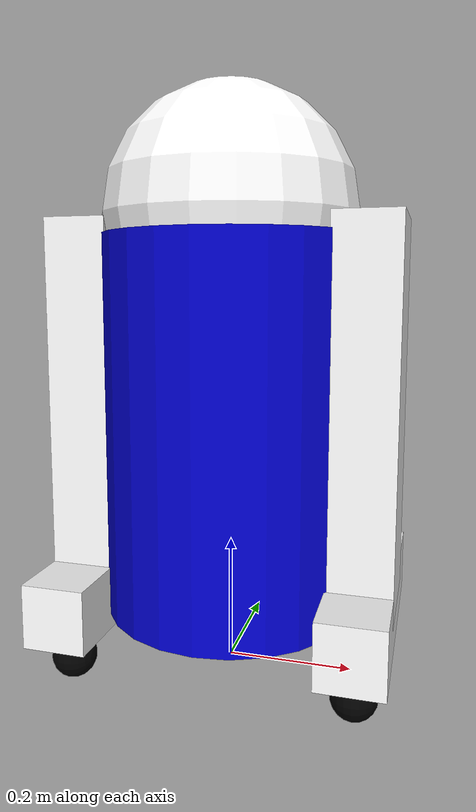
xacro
<?xml version='1.0'?>

<robot name="astromech" xmlns:xacro="http://www.ros.org/wiki/xacro">

  <xacro:include filename="$(find astromech_description)/urdf/astromech.gazebo" />
  <!--xacro:include filename="$(find astromech_description)/urdf/materials.xacro" /-->
  <!--xacro:include filename="$(find astromech_description)/urdf/macros.xacro"/-->
  <xacro:include filename="$(find astromech_description)/urdf/astromech.cameraplugin.xacro" />
  <!--xacro:include filename="$(find astromech_description)/urdf/materials.xacro" /-->
  <xacro:include filename="$(find astromech_description)/urdf/macros.xacro"/>

  <xacro:property name="camera_size" value="0.02"/>
  <xacro:property name="camera_origin_x" value="0.065"/>
  <xacro:property name="camera_origin_y" value="0"/>
  <xacro:property name="camera_origin_z" value="0.025"/>

	<xacro:macro name="default_inertial" params="mass">
    <inertial>
      <mass value="${mass}"/>
      <inertia ixx="1.0" ixy="0.0" ixz="0.0" iyy="1.0" iyz="0.0" izz="1.0"/>
    </inertial>
  </xacro:macro>

<link name="base_link">
<visual>
<geometry>
<cylinder length="0.6" radius="0.2"/>
</geometry>
  <origin rpy="0 0 0" xyz="0 0 0.395"/>
<material name="blue">
<color rgba="0 0 .8 1"/>
</material>
</visual>
</link>
<link name="right_leg">
<visual>
<geometry>
<box size="0.6 .2 .1"/>
</geometry>
<origin rpy="0 1.57075 0" xyz="0 0 -0.3"/>
<material name="white">
<color rgba="1 1 1 1"/>
</material>
</visual>
</link>
<joint name="base_to_right_leg" type="fixed">
<parent link="base_link"/>
<child link="right_leg"/>
<origin xyz="0.22 0 .720"/>
</joint>
<link name="right_base">
<visual>
<geometry>
<box size=".1 0.4 .1"/>
</geometry>
<material name="white"/>
</visual>
</link>
<joint name="right_base_joint" type="fixed">
<parent link="right_leg"/>
<child link="right_base"/>
<origin xyz="0 0 -0.6"/>
</joint>
<link name="right_front_wheel">
<visual>
<geometry>
<sphere  radius="0.035"/>
</geometry>
<material name="black">
<color rgba="0 0 0 1"/>
</material>
</visual>
</link>
<joint name="right_front_wheel_joint" type="continuous">
<axis xyz="0 0 1"/>
<parent link="right_base"/>
<child link="right_front_wheel"/>
<origin rpy="0 1.57075 0" xyz="0 0.133333333333 -0.085"/>
<limit effort="100" velocity="100"/>
<dynamics damping="0.0" friction="0.0"/>
</joint>
<link name="right_back_wheel">
<visual>
<geometry>
<sphere radius="0.035"/>
</geometry>
<material name="black"/>
</visual>
</link>
<joint name="right_back_wheel_joint" type="continuous">
<axis xyz="0 0 1"/>
<parent link="right_base"/>
<child link="right_back_wheel"/>
<origin rpy="0 1.57075 0" xyz="0 -0.133333333333 -0.085"/>
<limit effort="100" velocity="100"/>
<dynamics damping="0.0" friction="0.0"/>
</joint>
<link name="left_leg">
<visual>
<geometry>
<box size="0.6 .2 .1"/>
</geometry>
<origin rpy="0 1.57075 0" xyz="0 0 -0.3"/>
<material name="white"/>
</visual>
</link>
<joint name="base_to_left_leg" type="fixed">
<parent link="base_link"/>
<child link="left_leg"/>
<origin xyz="-0.22 0 .720"/>
</joint>
<link name="left_base">
<visual>
<geometry>
<box size=".1 0.4 .1"/>
</geometry>
<material name="white"/>
</visual>
</link>
<joint name="left_base_joint" type="fixed">
<parent link="left_leg"/>
<child link="left_base"/>
<origin xyz="0 0 -0.6"/>
</joint>
<link name="left_front_wheel">
<visual>
<geometry>
<sphere radius="0.035"/>
</geometry>
<material name="black"/>
</visual>
</link>
<joint name="left_front_wheel_joint" type="continuous">
<axis xyz="0 0 1"/>
<parent link="left_base"/>
<child link="left_front_wheel"/>
<origin rpy="0 1.57075 0" xyz="0 0.133333333333 -0.085"/>
<limit effort="100" velocity="100"/>
<dynamics damping="0.0" friction="0.0"/>
</joint>
<link name="left_back_wheel">
<visual>
<geometry>
<sphere radius="0.035"/>
</geometry>
<material name="black"/>
</visual>
</link>
<joint name="left_back_wheel_joint" type="continuous">
<axis xyz="0 0 1"/>
<parent link="left_base"/>
<child link="left_back_wheel"/>
<origin rpy="0 1.57075 0" xyz="0 -0.133333333333 -0.085"/>
<limit effort="100" velocity="100"/>
<dynamics damping="0.0" friction="0.0"/>
</joint>

<link name="head">
<visual>
<geometry>
<sphere radius="0.2"/>
</geometry>
<material name="white"/>
</visual>
</link>
<joint name="head_swivel" type="continuous">
<parent link="base_link"/>
<child link="head"/>
<axis xyz="0 0 1"/>
<origin xyz="0 0 0.725"/>
</joint>
<link name="box">
<visual>
<geometry>
<box size=".08 .08 .08"/>
</geometry>
<material name="blue"/>
</visual>
</link>
<joint name="tobox" type="fixed">
<parent link="head"/>
<child link="box"/>
<origin xyz="0 0.1414 0.1414"/>
</joint>

<!--Camera-->

</robot>
